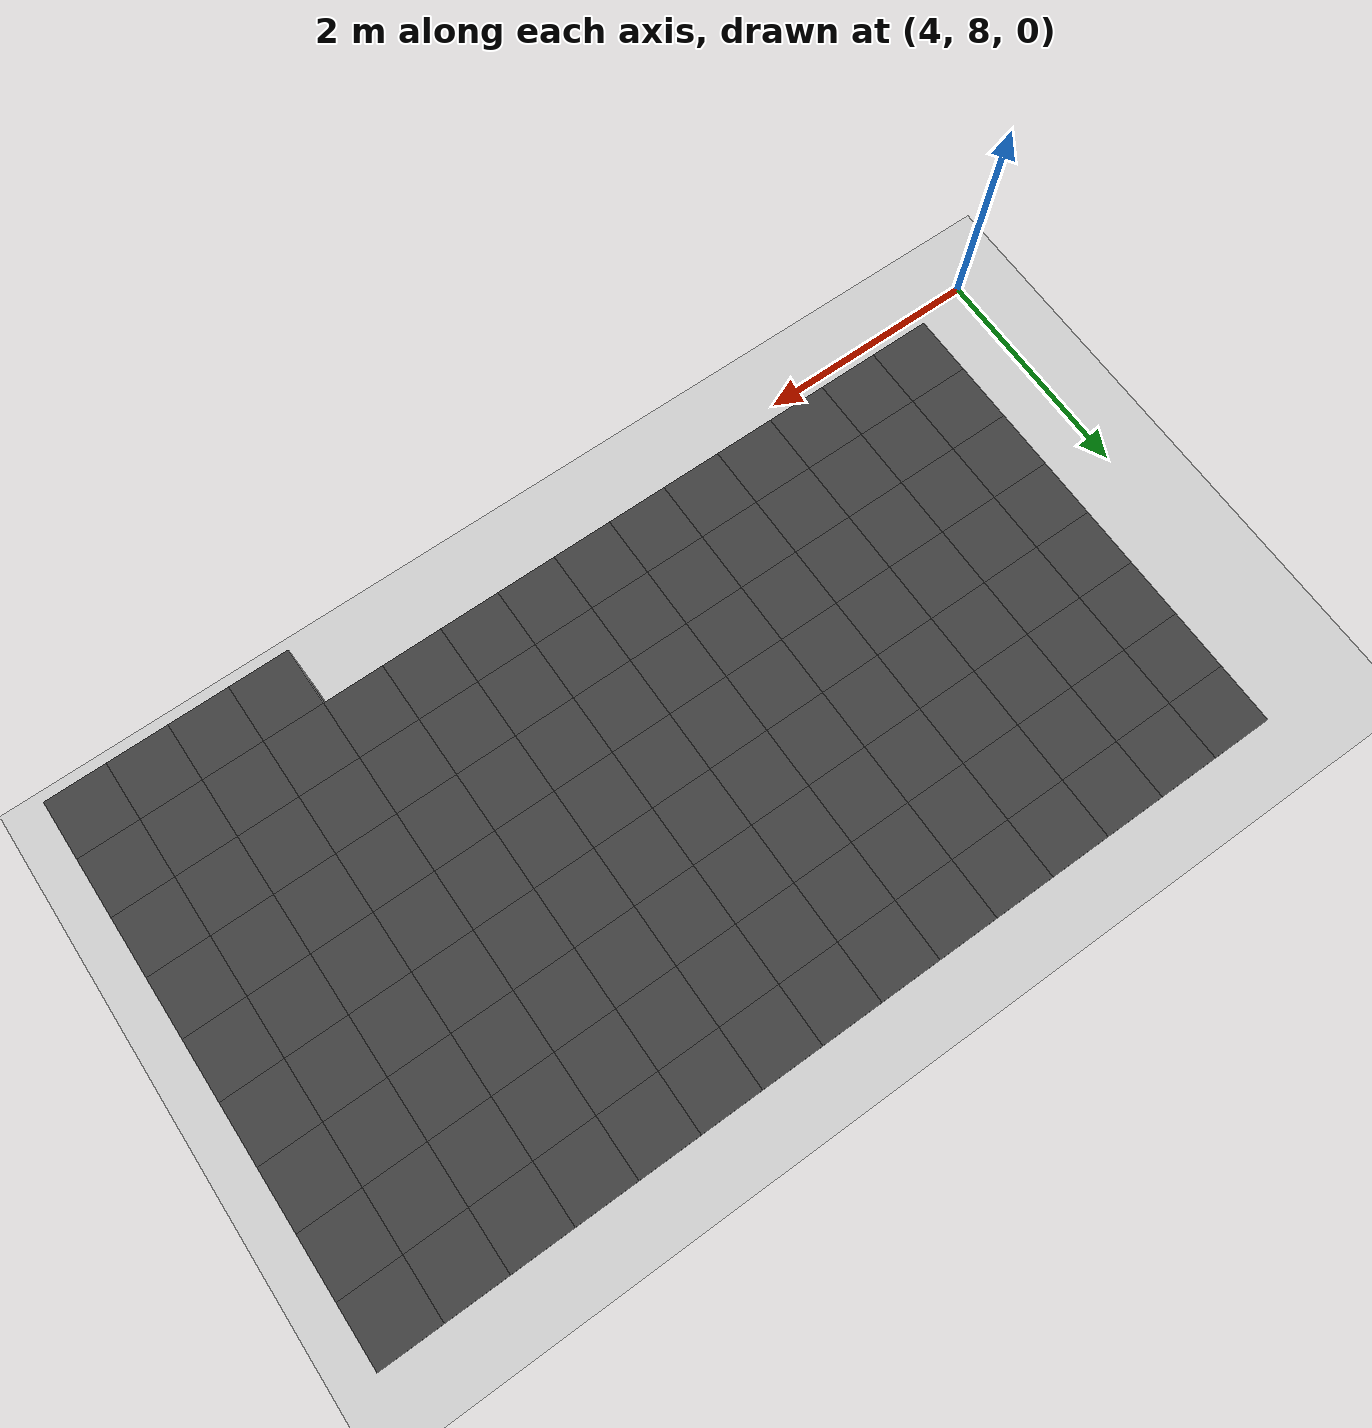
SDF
<sdf version="1.7">
 <world name="map_13364">
  <model name="ground_plane">
   <static>true</static>
   <link name="link">
    <collision name="collision">
     <geometry><plane><normal>0 0 1</normal><size>200 200</size></plane></geometry>
    </collision>
    <visual name="visual">
     <geometry><plane><normal>0 0 1</normal><size>200 200</size></plane></geometry>
     <material><ambient>0.8 0.8 0.8 1</ambient><diffuse>0.8 0.8 0.8 1</diffuse></material>
    </visual>
   </link>
  </model>
  <model name="maze_environment">
   <static>true</static>
   <link name="wall_35">
    <pose>5.250 12.250 0.500 0 0 0</pose>
    <collision name="col"><geometry><box><size>0.5 0.5 1.0</size></box></geometry></collision>
    <visual name="vis">
     <geometry><box><size>0.5 0.5 1.0</size></box></geometry>
     <material><ambient>0.15 0.15 0.15 1</ambient><diffuse>0.25 0.25 0.25 1</diffuse></material>
    </visual>
   </link>
   <link name="wall_36">
    <pose>5.750 12.250 0.500 0 0 0</pose>
    <collision name="col"><geometry><box><size>0.5 0.5 1.0</size></box></geometry></collision>
    <visual name="vis">
     <geometry><box><size>0.5 0.5 1.0</size></box></geometry>
     <material><ambient>0.15 0.15 0.15 1</ambient><diffuse>0.25 0.25 0.25 1</diffuse></material>
    </visual>
   </link>
   <link name="wall_37">
    <pose>6.250 12.250 0.500 0 0 0</pose>
    <collision name="col"><geometry><box><size>0.5 0.5 1.0</size></box></geometry></collision>
    <visual name="vis">
     <geometry><box><size>0.5 0.5 1.0</size></box></geometry>
     <material><ambient>0.15 0.15 0.15 1</ambient><diffuse>0.25 0.25 0.25 1</diffuse></material>
    </visual>
   </link>
   <link name="wall_38">
    <pose>6.750 12.250 0.500 0 0 0</pose>
    <collision name="col"><geometry><box><size>0.5 0.5 1.0</size></box></geometry></collision>
    <visual name="vis">
     <geometry><box><size>0.5 0.5 1.0</size></box></geometry>
     <material><ambient>0.15 0.15 0.15 1</ambient><diffuse>0.25 0.25 0.25 1</diffuse></material>
    </visual>
   </link>
   <link name="wall_39">
    <pose>7.250 12.250 0.500 0 0 0</pose>
    <collision name="col"><geometry><box><size>0.5 0.5 1.0</size></box></geometry></collision>
    <visual name="vis">
     <geometry><box><size>0.5 0.5 1.0</size></box></geometry>
     <material><ambient>0.15 0.15 0.15 1</ambient><diffuse>0.25 0.25 0.25 1</diffuse></material>
    </visual>
   </link>
   <link name="wall_40">
    <pose>7.750 12.250 0.500 0 0 0</pose>
    <collision name="col"><geometry><box><size>0.5 0.5 1.0</size></box></geometry></collision>
    <visual name="vis">
     <geometry><box><size>0.5 0.5 1.0</size></box></geometry>
     <material><ambient>0.15 0.15 0.15 1</ambient><diffuse>0.25 0.25 0.25 1</diffuse></material>
    </visual>
   </link>
   <link name="wall_41">
    <pose>8.250 12.250 0.500 0 0 0</pose>
    <collision name="col"><geometry><box><size>0.5 0.5 1.0</size></box></geometry></collision>
    <visual name="vis">
     <geometry><box><size>0.5 0.5 1.0</size></box></geometry>
     <material><ambient>0.15 0.15 0.15 1</ambient><diffuse>0.25 0.25 0.25 1</diffuse></material>
    </visual>
   </link>
   <link name="wall_42">
    <pose>8.750 12.250 0.500 0 0 0</pose>
    <collision name="col"><geometry><box><size>0.5 0.5 1.0</size></box></geometry></collision>
    <visual name="vis">
     <geometry><box><size>0.5 0.5 1.0</size></box></geometry>
     <material><ambient>0.15 0.15 0.15 1</ambient><diffuse>0.25 0.25 0.25 1</diffuse></material>
    </visual>
   </link>
   <link name="wall_43">
    <pose>9.250 12.250 0.500 0 0 0</pose>
    <collision name="col"><geometry><box><size>0.5 0.5 1.0</size></box></geometry></collision>
    <visual name="vis">
     <geometry><box><size>0.5 0.5 1.0</size></box></geometry>
     <material><ambient>0.15 0.15 0.15 1</ambient><diffuse>0.25 0.25 0.25 1</diffuse></material>
    </visual>
   </link>
   <link name="wall_44">
    <pose>9.750 12.250 0.500 0 0 0</pose>
    <collision name="col"><geometry><box><size>0.5 0.5 1.0</size></box></geometry></collision>
    <visual name="vis">
     <geometry><box><size>0.5 0.5 1.0</size></box></geometry>
     <material><ambient>0.15 0.15 0.15 1</ambient><diffuse>0.25 0.25 0.25 1</diffuse></material>
    </visual>
   </link>
   <link name="wall_45">
    <pose>10.250 12.250 0.500 0 0 0</pose>
    <collision name="col"><geometry><box><size>0.5 0.5 1.0</size></box></geometry></collision>
    <visual name="vis">
     <geometry><box><size>0.5 0.5 1.0</size></box></geometry>
     <material><ambient>0.15 0.15 0.15 1</ambient><diffuse>0.25 0.25 0.25 1</diffuse></material>
    </visual>
   </link>
   <link name="wall_46">
    <pose>10.750 12.250 0.500 0 0 0</pose>
    <collision name="col"><geometry><box><size>0.5 0.5 1.0</size></box></geometry></collision>
    <visual name="vis">
     <geometry><box><size>0.5 0.5 1.0</size></box></geometry>
     <material><ambient>0.15 0.15 0.15 1</ambient><diffuse>0.25 0.25 0.25 1</diffuse></material>
    </visual>
   </link>
   <link name="wall_47">
    <pose>11.250 12.250 0.500 0 0 0</pose>
    <collision name="col"><geometry><box><size>0.5 0.5 1.0</size></box></geometry></collision>
    <visual name="vis">
     <geometry><box><size>0.5 0.5 1.0</size></box></geometry>
     <material><ambient>0.15 0.15 0.15 1</ambient><diffuse>0.25 0.25 0.25 1</diffuse></material>
    </visual>
   </link>
   <link name="wall_48">
    <pose>11.750 12.250 0.500 0 0 0</pose>
    <collision name="col"><geometry><box><size>0.5 0.5 1.0</size></box></geometry></collision>
    <visual name="vis">
     <geometry><box><size>0.5 0.5 1.0</size></box></geometry>
     <material><ambient>0.15 0.15 0.15 1</ambient><diffuse>0.25 0.25 0.25 1</diffuse></material>
    </visual>
   </link>
   <link name="wall_49">
    <pose>12.250 12.250 0.500 0 0 0</pose>
    <collision name="col"><geometry><box><size>0.5 0.5 1.0</size></box></geometry></collision>
    <visual name="vis">
     <geometry><box><size>0.5 0.5 1.0</size></box></geometry>
     <material><ambient>0.15 0.15 0.15 1</ambient><diffuse>0.25 0.25 0.25 1</diffuse></material>
    </visual>
   </link>
   <link name="wall_82">
    <pose>5.250 11.750 0.500 0 0 0</pose>
    <collision name="col"><geometry><box><size>0.5 0.5 1.0</size></box></geometry></collision>
    <visual name="vis">
     <geometry><box><size>0.5 0.5 1.0</size></box></geometry>
     <material><ambient>0.15 0.15 0.15 1</ambient><diffuse>0.25 0.25 0.25 1</diffuse></material>
    </visual>
   </link>
   <link name="wall_83">
    <pose>5.750 11.750 0.500 0 0 0</pose>
    <collision name="col"><geometry><box><size>0.5 0.5 1.0</size></box></geometry></collision>
    <visual name="vis">
     <geometry><box><size>0.5 0.5 1.0</size></box></geometry>
     <material><ambient>0.15 0.15 0.15 1</ambient><diffuse>0.25 0.25 0.25 1</diffuse></material>
    </visual>
   </link>
   <link name="wall_84">
    <pose>6.250 11.750 0.500 0 0 0</pose>
    <collision name="col"><geometry><box><size>0.5 0.5 1.0</size></box></geometry></collision>
    <visual name="vis">
     <geometry><box><size>0.5 0.5 1.0</size></box></geometry>
     <material><ambient>0.15 0.15 0.15 1</ambient><diffuse>0.25 0.25 0.25 1</diffuse></material>
    </visual>
   </link>
   <link name="wall_85">
    <pose>6.750 11.750 0.500 0 0 0</pose>
    <collision name="col"><geometry><box><size>0.5 0.5 1.0</size></box></geometry></collision>
    <visual name="vis">
     <geometry><box><size>0.5 0.5 1.0</size></box></geometry>
     <material><ambient>0.15 0.15 0.15 1</ambient><diffuse>0.25 0.25 0.25 1</diffuse></material>
    </visual>
   </link>
   <link name="wall_86">
    <pose>7.250 11.750 0.500 0 0 0</pose>
    <collision name="col"><geometry><box><size>0.5 0.5 1.0</size></box></geometry></collision>
    <visual name="vis">
     <geometry><box><size>0.5 0.5 1.0</size></box></geometry>
     <material><ambient>0.15 0.15 0.15 1</ambient><diffuse>0.25 0.25 0.25 1</diffuse></material>
    </visual>
   </link>
   <link name="wall_87">
    <pose>7.750 11.750 0.500 0 0 0</pose>
    <collision name="col"><geometry><box><size>0.5 0.5 1.0</size></box></geometry></collision>
    <visual name="vis">
     <geometry><box><size>0.5 0.5 1.0</size></box></geometry>
     <material><ambient>0.15 0.15 0.15 1</ambient><diffuse>0.25 0.25 0.25 1</diffuse></material>
    </visual>
   </link>
   <link name="wall_88">
    <pose>8.250 11.750 0.500 0 0 0</pose>
    <collision name="col"><geometry><box><size>0.5 0.5 1.0</size></box></geometry></collision>
    <visual name="vis">
     <geometry><box><size>0.5 0.5 1.0</size></box></geometry>
     <material><ambient>0.15 0.15 0.15 1</ambient><diffuse>0.25 0.25 0.25 1</diffuse></material>
    </visual>
   </link>
   <link name="wall_89">
    <pose>8.750 11.750 0.500 0 0 0</pose>
    <collision name="col"><geometry><box><size>0.5 0.5 1.0</size></box></geometry></collision>
    <visual name="vis">
     <geometry><box><size>0.5 0.5 1.0</size></box></geometry>
     <material><ambient>0.15 0.15 0.15 1</ambient><diffuse>0.25 0.25 0.25 1</diffuse></material>
    </visual>
   </link>
   <link name="wall_90">
    <pose>9.250 11.750 0.500 0 0 0</pose>
    <collision name="col"><geometry><box><size>0.5 0.5 1.0</size></box></geometry></collision>
    <visual name="vis">
     <geometry><box><size>0.5 0.5 1.0</size></box></geometry>
     <material><ambient>0.15 0.15 0.15 1</ambient><diffuse>0.25 0.25 0.25 1</diffuse></material>
    </visual>
   </link>
   <link name="wall_91">
    <pose>9.750 11.750 0.500 0 0 0</pose>
    <collision name="col"><geometry><box><size>0.5 0.5 1.0</size></box></geometry></collision>
    <visual name="vis">
     <geometry><box><size>0.5 0.5 1.0</size></box></geometry>
     <material><ambient>0.15 0.15 0.15 1</ambient><diffuse>0.25 0.25 0.25 1</diffuse></material>
    </visual>
   </link>
   <link name="wall_92">
    <pose>10.250 11.750 0.500 0 0 0</pose>
    <collision name="col"><geometry><box><size>0.5 0.5 1.0</size></box></geometry></collision>
    <visual name="vis">
     <geometry><box><size>0.5 0.5 1.0</size></box></geometry>
     <material><ambient>0.15 0.15 0.15 1</ambient><diffuse>0.25 0.25 0.25 1</diffuse></material>
    </visual>
   </link>
   <link name="wall_93">
    <pose>10.750 11.750 0.500 0 0 0</pose>
    <collision name="col"><geometry><box><size>0.5 0.5 1.0</size></box></geometry></collision>
    <visual name="vis">
     <geometry><box><size>0.5 0.5 1.0</size></box></geometry>
     <material><ambient>0.15 0.15 0.15 1</ambient><diffuse>0.25 0.25 0.25 1</diffuse></material>
    </visual>
   </link>
   <link name="wall_94">
    <pose>11.250 11.750 0.500 0 0 0</pose>
    <collision name="col"><geometry><box><size>0.5 0.5 1.0</size></box></geometry></collision>
    <visual name="vis">
     <geometry><box><size>0.5 0.5 1.0</size></box></geometry>
     <material><ambient>0.15 0.15 0.15 1</ambient><diffuse>0.25 0.25 0.25 1</diffuse></material>
    </visual>
   </link>
   <link name="wall_95">
    <pose>11.750 11.750 0.500 0 0 0</pose>
    <collision name="col"><geometry><box><size>0.5 0.5 1.0</size></box></geometry></collision>
    <visual name="vis">
     <geometry><box><size>0.5 0.5 1.0</size></box></geometry>
     <material><ambient>0.15 0.15 0.15 1</ambient><diffuse>0.25 0.25 0.25 1</diffuse></material>
    </visual>
   </link>
   <link name="wall_96">
    <pose>12.250 11.750 0.500 0 0 0</pose>
    <collision name="col"><geometry><box><size>0.5 0.5 1.0</size></box></geometry></collision>
    <visual name="vis">
     <geometry><box><size>0.5 0.5 1.0</size></box></geometry>
     <material><ambient>0.15 0.15 0.15 1</ambient><diffuse>0.25 0.25 0.25 1</diffuse></material>
    </visual>
   </link>
   <link name="wall_129">
    <pose>5.250 11.250 0.500 0 0 0</pose>
    <collision name="col"><geometry><box><size>0.5 0.5 1.0</size></box></geometry></collision>
    <visual name="vis">
     <geometry><box><size>0.5 0.5 1.0</size></box></geometry>
     <material><ambient>0.15 0.15 0.15 1</ambient><diffuse>0.25 0.25 0.25 1</diffuse></material>
    </visual>
   </link>
   <link name="wall_130">
    <pose>5.750 11.250 0.500 0 0 0</pose>
    <collision name="col"><geometry><box><size>0.5 0.5 1.0</size></box></geometry></collision>
    <visual name="vis">
     <geometry><box><size>0.5 0.5 1.0</size></box></geometry>
     <material><ambient>0.15 0.15 0.15 1</ambient><diffuse>0.25 0.25 0.25 1</diffuse></material>
    </visual>
   </link>
   <link name="wall_131">
    <pose>6.250 11.250 0.500 0 0 0</pose>
    <collision name="col"><geometry><box><size>0.5 0.5 1.0</size></box></geometry></collision>
    <visual name="vis">
     <geometry><box><size>0.5 0.5 1.0</size></box></geometry>
     <material><ambient>0.15 0.15 0.15 1</ambient><diffuse>0.25 0.25 0.25 1</diffuse></material>
    </visual>
   </link>
   <link name="wall_132">
    <pose>6.750 11.250 0.500 0 0 0</pose>
    <collision name="col"><geometry><box><size>0.5 0.5 1.0</size></box></geometry></collision>
    <visual name="vis">
     <geometry><box><size>0.5 0.5 1.0</size></box></geometry>
     <material><ambient>0.15 0.15 0.15 1</ambient><diffuse>0.25 0.25 0.25 1</diffuse></material>
    </visual>
   </link>
   <link name="wall_133">
    <pose>7.250 11.250 0.500 0 0 0</pose>
    <collision name="col"><geometry><box><size>0.5 0.5 1.0</size></box></geometry></collision>
    <visual name="vis">
     <geometry><box><size>0.5 0.5 1.0</size></box></geometry>
     <material><ambient>0.15 0.15 0.15 1</ambient><diffuse>0.25 0.25 0.25 1</diffuse></material>
    </visual>
   </link>
   <link name="wall_134">
    <pose>7.750 11.250 0.500 0 0 0</pose>
    <collision name="col"><geometry><box><size>0.5 0.5 1.0</size></box></geometry></collision>
    <visual name="vis">
     <geometry><box><size>0.5 0.5 1.0</size></box></geometry>
     <material><ambient>0.15 0.15 0.15 1</ambient><diffuse>0.25 0.25 0.25 1</diffuse></material>
    </visual>
   </link>
   <link name="wall_135">
    <pose>8.250 11.250 0.500 0 0 0</pose>
    <collision name="col"><geometry><box><size>0.5 0.5 1.0</size></box></geometry></collision>
    <visual name="vis">
     <geometry><box><size>0.5 0.5 1.0</size></box></geometry>
     <material><ambient>0.15 0.15 0.15 1</ambient><diffuse>0.25 0.25 0.25 1</diffuse></material>
    </visual>
   </link>
   <link name="wall_136">
    <pose>8.750 11.250 0.500 0 0 0</pose>
    <collision name="col"><geometry><box><size>0.5 0.5 1.0</size></box></geometry></collision>
    <visual name="vis">
     <geometry><box><size>0.5 0.5 1.0</size></box></geometry>
     <material><ambient>0.15 0.15 0.15 1</ambient><diffuse>0.25 0.25 0.25 1</diffuse></material>
    </visual>
   </link>
   <link name="wall_137">
    <pose>9.250 11.250 0.500 0 0 0</pose>
    <collision name="col"><geometry><box><size>0.5 0.5 1.0</size></box></geometry></collision>
    <visual name="vis">
     <geometry><box><size>0.5 0.5 1.0</size></box></geometry>
     <material><ambient>0.15 0.15 0.15 1</ambient><diffuse>0.25 0.25 0.25 1</diffuse></material>
    </visual>
   </link>
   <link name="wall_138">
    <pose>9.750 11.250 0.500 0 0 0</pose>
    <collision name="col"><geometry><box><size>0.5 0.5 1.0</size></box></geometry></collision>
    <visual name="vis">
     <geometry><box><size>0.5 0.5 1.0</size></box></geometry>
     <material><ambient>0.15 0.15 0.15 1</ambient><diffuse>0.25 0.25 0.25 1</diffuse></material>
    </visual>
   </link>
   <link name="wall_139">
    <pose>10.250 11.250 0.500 0 0 0</pose>
    <collision name="col"><geometry><box><size>0.5 0.5 1.0</size></box></geometry></collision>
    <visual name="vis">
     <geometry><box><size>0.5 0.5 1.0</size></box></geometry>
     <material><ambient>0.15 0.15 0.15 1</ambient><diffuse>0.25 0.25 0.25 1</diffuse></material>
    </visual>
   </link>
   <link name="wall_140">
    <pose>10.750 11.250 0.500 0 0 0</pose>
    <collision name="col"><geometry><box><size>0.5 0.5 1.0</size></box></geometry></collision>
    <visual name="vis">
     <geometry><box><size>0.5 0.5 1.0</size></box></geometry>
     <material><ambient>0.15 0.15 0.15 1</ambient><diffuse>0.25 0.25 0.25 1</diffuse></material>
    </visual>
   </link>
   <link name="wall_141">
    <pose>11.250 11.250 0.500 0 0 0</pose>
    <collision name="col"><geometry><box><size>0.5 0.5 1.0</size></box></geometry></collision>
    <visual name="vis">
     <geometry><box><size>0.5 0.5 1.0</size></box></geometry>
     <material><ambient>0.15 0.15 0.15 1</ambient><diffuse>0.25 0.25 0.25 1</diffuse></material>
    </visual>
   </link>
   <link name="wall_142">
    <pose>11.750 11.250 0.500 0 0 0</pose>
    <collision name="col"><geometry><box><size>0.5 0.5 1.0</size></box></geometry></collision>
    <visual name="vis">
     <geometry><box><size>0.5 0.5 1.0</size></box></geometry>
     <material><ambient>0.15 0.15 0.15 1</ambient><diffuse>0.25 0.25 0.25 1</diffuse></material>
    </visual>
   </link>
   <link name="wall_143">
    <pose>12.250 11.250 0.500 0 0 0</pose>
    <collision name="col"><geometry><box><size>0.5 0.5 1.0</size></box></geometry></collision>
    <visual name="vis">
     <geometry><box><size>0.5 0.5 1.0</size></box></geometry>
     <material><ambient>0.15 0.15 0.15 1</ambient><diffuse>0.25 0.25 0.25 1</diffuse></material>
    </visual>
   </link>
   <link name="wall_176">
    <pose>5.250 10.750 0.500 0 0 0</pose>
    <collision name="col"><geometry><box><size>0.5 0.5 1.0</size></box></geometry></collision>
    <visual name="vis">
     <geometry><box><size>0.5 0.5 1.0</size></box></geometry>
     <material><ambient>0.15 0.15 0.15 1</ambient><diffuse>0.25 0.25 0.25 1</diffuse></material>
    </visual>
   </link>
   <link name="wall_177">
    <pose>5.750 10.750 0.500 0 0 0</pose>
    <collision name="col"><geometry><box><size>0.5 0.5 1.0</size></box></geometry></collision>
    <visual name="vis">
     <geometry><box><size>0.5 0.5 1.0</size></box></geometry>
     <material><ambient>0.15 0.15 0.15 1</ambient><diffuse>0.25 0.25 0.25 1</diffuse></material>
    </visual>
   </link>
   <link name="wall_178">
    <pose>6.250 10.750 0.500 0 0 0</pose>
    <collision name="col"><geometry><box><size>0.5 0.5 1.0</size></box></geometry></collision>
    <visual name="vis">
     <geometry><box><size>0.5 0.5 1.0</size></box></geometry>
     <material><ambient>0.15 0.15 0.15 1</ambient><diffuse>0.25 0.25 0.25 1</diffuse></material>
    </visual>
   </link>
   <link name="wall_179">
    <pose>6.750 10.750 0.500 0 0 0</pose>
    <collision name="col"><geometry><box><size>0.5 0.5 1.0</size></box></geometry></collision>
    <visual name="vis">
     <geometry><box><size>0.5 0.5 1.0</size></box></geometry>
     <material><ambient>0.15 0.15 0.15 1</ambient><diffuse>0.25 0.25 0.25 1</diffuse></material>
    </visual>
   </link>
   <link name="wall_180">
    <pose>7.250 10.750 0.500 0 0 0</pose>
    <collision name="col"><geometry><box><size>0.5 0.5 1.0</size></box></geometry></collision>
    <visual name="vis">
     <geometry><box><size>0.5 0.5 1.0</size></box></geometry>
     <material><ambient>0.15 0.15 0.15 1</ambient><diffuse>0.25 0.25 0.25 1</diffuse></material>
    </visual>
   </link>
   <link name="wall_181">
    <pose>7.750 10.750 0.500 0 0 0</pose>
    <collision name="col"><geometry><box><size>0.5 0.5 1.0</size></box></geometry></collision>
    <visual name="vis">
     <geometry><box><size>0.5 0.5 1.0</size></box></geometry>
     <material><ambient>0.15 0.15 0.15 1</ambient><diffuse>0.25 0.25 0.25 1</diffuse></material>
    </visual>
   </link>
   <link name="wall_182">
    <pose>8.250 10.750 0.500 0 0 0</pose>
    <collision name="col"><geometry><box><size>0.5 0.5 1.0</size></box></geometry></collision>
    <visual name="vis">
     <geometry><box><size>0.5 0.5 1.0</size></box></geometry>
     <material><ambient>0.15 0.15 0.15 1</ambient><diffuse>0.25 0.25 0.25 1</diffuse></material>
    </visual>
   </link>
   <link name="wall_183">
    <pose>8.750 10.750 0.500 0 0 0</pose>
    <collision name="col"><geometry><box><size>0.5 0.5 1.0</size></box></geometry></collision>
    <visual name="vis">
     <geometry><box><size>0.5 0.5 1.0</size></box></geometry>
     <material><ambient>0.15 0.15 0.15 1</ambient><diffuse>0.25 0.25 0.25 1</diffuse></material>
    </visual>
   </link>
   <link name="wall_184">
    <pose>9.250 10.750 0.500 0 0 0</pose>
    <collision name="col"><geometry><box><size>0.5 0.5 1.0</size></box></geometry></collision>
    <visual name="vis">
     <geometry><box><size>0.5 0.5 1.0</size></box></geometry>
     <material><ambient>0.15 0.15 0.15 1</ambient><diffuse>0.25 0.25 0.25 1</diffuse></material>
    </visual>
   </link>
   <link name="wall_185">
    <pose>9.750 10.750 0.500 0 0 0</pose>
    <collision name="col"><geometry><box><size>0.5 0.5 1.0</size></box></geometry></collision>
    <visual name="vis">
     <geometry><box><size>0.5 0.5 1.0</size></box></geometry>
     <material><ambient>0.15 0.15 0.15 1</ambient><diffuse>0.25 0.25 0.25 1</diffuse></material>
    </visual>
   </link>
   <link name="wall_186">
    <pose>10.250 10.750 0.500 0 0 0</pose>
    <collision name="col"><geometry><box><size>0.5 0.5 1.0</size></box></geometry></collision>
    <visual name="vis">
     <geometry><box><size>0.5 0.5 1.0</size></box></geometry>
     <material><ambient>0.15 0.15 0.15 1</ambient><diffuse>0.25 0.25 0.25 1</diffuse></material>
    </visual>
   </link>
   <link name="wall_187">
    <pose>10.750 10.750 0.500 0 0 0</pose>
    <collision name="col"><geometry><box><size>0.5 0.5 1.0</size></box></geometry></collision>
    <visual name="vis">
     <geometry><box><size>0.5 0.5 1.0</size></box></geometry>
     <material><ambient>0.15 0.15 0.15 1</ambient><diffuse>0.25 0.25 0.25 1</diffuse></material>
    </visual>
   </link>
   <link name="wall_188">
    <pose>11.250 10.750 0.500 0 0 0</pose>
    <collision name="col"><geometry><box><size>0.5 0.5 1.0</size></box></geometry></collision>
    <visual name="vis">
     <geometry><box><size>0.5 0.5 1.0</size></box></geometry>
     <material><ambient>0.15 0.15 0.15 1</ambient><diffuse>0.25 0.25 0.25 1</diffuse></material>
    </visual>
   </link>
   <link name="wall_189">
    <pose>11.750 10.750 0.500 0 0 0</pose>
    <collision name="col"><geometry><box><size>0.5 0.5 1.0</size></box></geometry></collision>
    <visual name="vis">
     <geometry><box><size>0.5 0.5 1.0</size></box></geometry>
     <material><ambient>0.15 0.15 0.15 1</ambient><diffuse>0.25 0.25 0.25 1</diffuse></material>
    </visual>
   </link>
   <link name="wall_190">
    <pose>12.250 10.750 0.500 0 0 0</pose>
    <collision name="col"><geometry><box><size>0.5 0.5 1.0</size></box></geometry></collision>
    <visual name="vis">
     <geometry><box><size>0.5 0.5 1.0</size></box></geometry>
     <material><ambient>0.15 0.15 0.15 1</ambient><diffuse>0.25 0.25 0.25 1</diffuse></material>
    </visual>
   </link>
   <link name="wall_220">
    <pose>5.250 10.250 0.500 0 0 0</pose>
    <collision name="col"><geometry><box><size>0.5 0.5 1.0</size></box></geometry></collision>
    <visual name="vis">
     <geometry><box><size>0.5 0.5 1.0</size></box></geometry>
     <material><ambient>0.15 0.15 0.15 1</ambient><diffuse>0.25 0.25 0.25 1</diffuse></material>
    </visual>
   </link>
   <link name="wall_221">
    <pose>5.750 10.250 0.500 0 0 0</pose>
    <collision name="col"><geometry><box><size>0.5 0.5 1.0</size></box></geometry></collision>
    <visual name="vis">
     <geometry><box><size>0.5 0.5 1.0</size></box></geometry>
     <material><ambient>0.15 0.15 0.15 1</ambient><diffuse>0.25 0.25 0.25 1</diffuse></material>
    </visual>
   </link>
   <link name="wall_222">
    <pose>6.250 10.250 0.500 0 0 0</pose>
    <collision name="col"><geometry><box><size>0.5 0.5 1.0</size></box></geometry></collision>
    <visual name="vis">
     <geometry><box><size>0.5 0.5 1.0</size></box></geometry>
     <material><ambient>0.15 0.15 0.15 1</ambient><diffuse>0.25 0.25 0.25 1</diffuse></material>
    </visual>
   </link>
   <link name="wall_223">
    <pose>6.750 10.250 0.500 0 0 0</pose>
    <collision name="col"><geometry><box><size>0.5 0.5 1.0</size></box></geometry></collision>
    <visual name="vis">
     <geometry><box><size>0.5 0.5 1.0</size></box></geometry>
     <material><ambient>0.15 0.15 0.15 1</ambient><diffuse>0.25 0.25 0.25 1</diffuse></material>
    </visual>
   </link>
   <link name="wall_224">
    <pose>7.250 10.250 0.500 0 0 0</pose>
    <collision name="col"><geometry><box><size>0.5 0.5 1.0</size></box></geometry></collision>
    <visual name="vis">
     <geometry><box><size>0.5 0.5 1.0</size></box></geometry>
     <material><ambient>0.15 0.15 0.15 1</ambient><diffuse>0.25 0.25 0.25 1</diffuse></material>
    </visual>
   </link>
   <link name="wall_225">
    <pose>7.750 10.250 0.500 0 0 0</pose>
    <collision name="col"><geometry><box><size>0.5 0.5 1.0</size></box></geometry></collision>
    <visual name="vis">
     <geometry><box><size>0.5 0.5 1.0</size></box></geometry>
     <material><ambient>0.15 0.15 0.15 1</ambient><diffuse>0.25 0.25 0.25 1</diffuse></material>
    </visual>
   </link>
   <link name="wall_226">
    <pose>8.250 10.250 0.500 0 0 0</pose>
    <collision name="col"><geometry><box><size>0.5 0.5 1.0</size></box></geometry></collision>
    <visual name="vis">
     <geometry><box><size>0.5 0.5 1.0</size></box></geometry>
     <material><ambient>0.15 0.15 0.15 1</ambient><diffuse>0.25 0.25 0.25 1</diffuse></material>
    </visual>
   </link>
   <link name="wall_227">
    <pose>8.750 10.250 0.500 0 0 0</pose>
    <collision name="col"><geometry><box><size>0.5 0.5 1.0</size></box></geometry></collision>
    <visual name="vis">
     <geometry><box><size>0.5 0.5 1.0</size></box></geometry>
     <material><ambient>0.15 0.15 0.15 1</ambient><diffuse>0.25 0.25 0.25 1</diffuse></material>
    </visual>
   </link>
   <link name="wall_228">
    <pose>9.250 10.250 0.500 0 0 0</pose>
    <collision name="col"><geometry><box><size>0.5 0.5 1.0</size></box></geometry></collision>
    <visual name="vis">
     <geometry><box><size>0.5 0.5 1.0</size></box></geometry>
     <material><ambient>0.15 0.15 0.15 1</ambient><diffuse>0.25 0.25 0.25 1</diffuse></material>
    </visual>
   </link>
   <link name="wall_229">
    <pose>9.750 10.250 0.500 0 0 0</pose>
    <collision name="col"><geometry><box><size>0.5 0.5 1.0</size></box></geometry></collision>
    <visual name="vis">
     <geometry><box><size>0.5 0.5 1.0</size></box></geometry>
     <material><ambient>0.15 0.15 0.15 1</ambient><diffuse>0.25 0.25 0.25 1</diffuse></material>
    </visual>
   </link>
   <link name="wall_230">
    <pose>10.250 10.250 0.500 0 0 0</pose>
    <collision name="col"><geometry><box><size>0.5 0.5 1.0</size></box></geometry></collision>
    <visual name="vis">
     <geometry><box><size>0.5 0.5 1.0</size></box></geometry>
     <material><ambient>0.15 0.15 0.15 1</ambient><diffuse>0.25 0.25 0.25 1</diffuse></material>
    </visual>
   </link>
   <link name="wall_231">
    <pose>10.750 10.250 0.500 0 0 0</pose>
    <collision name="col"><geometry><box><size>0.5 0.5 1.0</size></box></geometry></collision>
    <visual name="vis">
     <geometry><box><size>0.5 0.5 1.0</size></box></geometry>
     <material><ambient>0.15 0.15 0.15 1</ambient><diffuse>0.25 0.25 0.25 1</diffuse></material>
    </visual>
   </link>
   <link name="wall_232">
    <pose>11.250 10.250 0.500 0 0 0</pose>
    <collision name="col"><geometry><box><size>0.5 0.5 1.0</size></box></geometry></collision>
    <visual name="vis">
     <geometry><box><size>0.5 0.5 1.0</size></box></geometry>
     <material><ambient>0.15 0.15 0.15 1</ambient><diffuse>0.25 0.25 0.25 1</diffuse></material>
    </visual>
   </link>
   <link name="wall_233">
    <pose>11.750 10.250 0.500 0 0 0</pose>
    <collision name="col"><geometry><box><size>0.5 0.5 1.0</size></box></geometry></collision>
    <visual name="vis">
     <geometry><box><size>0.5 0.5 1.0</size></box></geometry>
     <material><ambient>0.15 0.15 0.15 1</ambient><diffuse>0.25 0.25 0.25 1</diffuse></material>
    </visual>
   </link>
   <link name="wall_234">
    <pose>12.250 10.250 0.500 0 0 0</pose>
    <collision name="col"><geometry><box><size>0.5 0.5 1.0</size></box></geometry></collision>
    <visual name="vis">
     <geometry><box><size>0.5 0.5 1.0</size></box></geometry>
     <material><ambient>0.15 0.15 0.15 1</ambient><diffuse>0.25 0.25 0.25 1</diffuse></material>
    </visual>
   </link>
   <link name="wall_264">
    <pose>5.250 9.750 0.500 0 0 0</pose>
    <collision name="col"><geometry><box><size>0.5 0.5 1.0</size></box></geometry></collision>
    <visual name="vis">
     <geometry><box><size>0.5 0.5 1.0</size></box></geometry>
     <material><ambient>0.15 0.15 0.15 1</ambient><diffuse>0.25 0.25 0.25 1</diffuse></material>
    </visual>
   </link>
   <link name="wall_265">
    <pose>5.750 9.750 0.500 0 0 0</pose>
    <collision name="col"><geometry><box><size>0.5 0.5 1.0</size></box></geometry></collision>
    <visual name="vis">
     <geometry><box><size>0.5 0.5 1.0</size></box></geometry>
     <material><ambient>0.15 0.15 0.15 1</ambient><diffuse>0.25 0.25 0.25 1</diffuse></material>
    </visual>
   </link>
   <link name="wall_266">
    <pose>6.250 9.750 0.500 0 0 0</pose>
    <collision name="col"><geometry><box><size>0.5 0.5 1.0</size></box></geometry></collision>
    <visual name="vis">
     <geometry><box><size>0.5 0.5 1.0</size></box></geometry>
     <material><ambient>0.15 0.15 0.15 1</ambient><diffuse>0.25 0.25 0.25 1</diffuse></material>
    </visual>
   </link>
   <link name="wall_267">
    <pose>6.750 9.750 0.500 0 0 0</pose>
    <collision name="col"><geometry><box><size>0.5 0.5 1.0</size></box></geometry></collision>
    <visual name="vis">
     <geometry><box><size>0.5 0.5 1.0</size></box></geometry>
     <material><ambient>0.15 0.15 0.15 1</ambient><diffuse>0.25 0.25 0.25 1</diffuse></material>
    </visual>
   </link>
   <link name="wall_268">
    <pose>7.250 9.750 0.500 0 0 0</pose>
    <collision name="col"><geometry><box><size>0.5 0.5 1.0</size></box></geometry></collision>
    <visual name="vis">
     <geometry><box><size>0.5 0.5 1.0</size></box></geometry>
     <material><ambient>0.15 0.15 0.15 1</ambient><diffuse>0.25 0.25 0.25 1</diffuse></material>
    </visual>
   </link>
   <link name="wall_269">
    <pose>7.750 9.750 0.500 0 0 0</pose>
    <collision name="col"><geometry><box><size>0.5 0.5 1.0</size></box></geometry></collision>
    <visual name="vis">
     <geometry><box><size>0.5 0.5 1.0</size></box></geometry>
     <material><ambient>0.15 0.15 0.15 1</ambient><diffuse>0.25 0.25 0.25 1</diffuse></material>
    </visual>
   </link>
   <link name="wall_270">
    <pose>8.250 9.750 0.500 0 0 0</pose>
    <collision name="col"><geometry><box><size>0.5 0.5 1.0</size></box></geometry></collision>
    <visual name="vis">
     <geometry><box><size>0.5 0.5 1.0</size></box></geometry>
     <material><ambient>0.15 0.15 0.15 1</ambient><diffuse>0.25 0.25 0.25 1</diffuse></material>
    </visual>
   </link>
   <link name="wall_271">
    <pose>8.750 9.750 0.500 0 0 0</pose>
    <collision name="col"><geometry><box><size>0.5 0.5 1.0</size></box></geometry></collision>
    <visual name="vis">
     <geometry><box><size>0.5 0.5 1.0</size></box></geometry>
     <material><ambient>0.15 0.15 0.15 1</ambient><diffuse>0.25 0.25 0.25 1</diffuse></material>
    </visual>
   </link>
   <link name="wall_272">
    <pose>9.250 9.750 0.500 0 0 0</pose>
    <collision name="col"><geometry><box><size>0.5 0.5 1.0</size></box></geometry></collision>
    <visual name="vis">
     <geometry><box><size>0.5 0.5 1.0</size></box></geometry>
     <material><ambient>0.15 0.15 0.15 1</ambient><diffuse>0.25 0.25 0.25 1</diffuse></material>
    </visual>
   </link>
   <link name="wall_273">
    <pose>9.750 9.750 0.500 0 0 0</pose>
    <collision name="col"><geometry><box><size>0.5 0.5 1.0</size></box></geometry></collision>
    <visual name="vis">
     <geometry><box><size>0.5 0.5 1.0</size></box></geometry>
     <material><ambient>0.15 0.15 0.15 1</ambient><diffuse>0.25 0.25 0.25 1</diffuse></material>
    </visual>
   </link>
   <link name="wall_274">
    <pose>10.250 9.750 0.500 0 0 0</pose>
    <collision name="col"><geometry><box><size>0.5 0.5 1.0</size></box></geometry></collision>
    <visual name="vis">
     <geometry><box><size>0.5 0.5 1.0</size></box></geometry>
     <material><ambient>0.15 0.15 0.15 1</ambient><diffuse>0.25 0.25 0.25 1</diffuse></material>
    </visual>
   </link>
   <link name="wall_275">
    <pose>10.750 9.750 0.500 0 0 0</pose>
    <collision name="col"><geometry><box><size>0.5 0.5 1.0</size></box></geometry></collision>
    <visual name="vis">
     <geometry><box><size>0.5 0.5 1.0</size></box></geometry>
     <material><ambient>0.15 0.15 0.15 1</ambient><diffuse>0.25 0.25 0.25 1</diffuse></material>
    </visual>
   </link>
   <link name="wall_276">
    <pose>11.250 9.750 0.500 0 0 0</pose>
    <collision name="col"><geometry><box><size>0.5 0.5 1.0</size></box></geometry></collision>
    <visual name="vis">
     <geometry><box><size>0.5 0.5 1.0</size></box></geometry>
     <material><ambient>0.15 0.15 0.15 1</ambient><diffuse>0.25 0.25 0.25 1</diffuse></material>
    </visual>
   </link>
   <link name="wall_277">
    <pose>11.750 9.750 0.500 0 0 0</pose>
    <collision name="col"><geometry><box><size>0.5 0.5 1.0</size></box></geometry></collision>
    <visual name="vis">
     <geometry><box><size>0.5 0.5 1.0</size></box></geometry>
     <material><ambient>0.15 0.15 0.15 1</ambient><diffuse>0.25 0.25 0.25 1</diffuse></material>
    </visual>
   </link>
   <link name="wall_278">
    <pose>12.250 9.750 0.500 0 0 0</pose>
    <collision name="col"><geometry><box><size>0.5 0.5 1.0</size></box></geometry></collision>
    <visual name="vis">
     <geometry><box><size>0.5 0.5 1.0</size></box></geometry>
     <material><ambient>0.15 0.15 0.15 1</ambient><diffuse>0.25 0.25 0.25 1</diffuse></material>
    </visual>
   </link>
   <link name="wall_308">
    <pose>5.250 9.250 0.500 0 0 0</pose>
    <collision name="col"><geometry><box><size>0.5 0.5 1.0</size></box></geometry></collision>
    <visual name="vis">
     <geometry><box><size>0.5 0.5 1.0</size></box></geometry>
     <material><ambient>0.15 0.15 0.15 1</ambient><diffuse>0.25 0.25 0.25 1</diffuse></material>
    </visual>
   </link>
   <link name="wall_309">
    <pose>5.750 9.250 0.500 0 0 0</pose>
    <collision name="col"><geometry><box><size>0.5 0.5 1.0</size></box></geometry></collision>
    <visual name="vis">
     <geometry><box><size>0.5 0.5 1.0</size></box></geometry>
     <material><ambient>0.15 0.15 0.15 1</ambient><diffuse>0.25 0.25 0.25 1</diffuse></material>
    </visual>
   </link>
   <link name="wall_310">
    <pose>6.250 9.250 0.500 0 0 0</pose>
    <collision name="col"><geometry><box><size>0.5 0.5 1.0</size></box></geometry></collision>
    <visual name="vis">
     <geometry><box><size>0.5 0.5 1.0</size></box></geometry>
     <material><ambient>0.15 0.15 0.15 1</ambient><diffuse>0.25 0.25 0.25 1</diffuse></material>
    </visual>
   </link>
   <link name="wall_311">
    <pose>6.750 9.250 0.500 0 0 0</pose>
    <collision name="col"><geometry><box><size>0.5 0.5 1.0</size></box></geometry></collision>
    <visual name="vis">
     <geometry><box><size>0.5 0.5 1.0</size></box></geometry>
     <material><ambient>0.15 0.15 0.15 1</ambient><diffuse>0.25 0.25 0.25 1</diffuse></material>
    </visual>
   </link>
   <link name="wall_312">
    <pose>7.250 9.250 0.500 0 0 0</pose>
    <collision name="col"><geometry><box><size>0.5 0.5 1.0</size></box></geometry></collision>
    <visual name="vis">
     <geometry><box><size>0.5 0.5 1.0</size></box></geometry>
     <material><ambient>0.15 0.15 0.15 1</ambient><diffuse>0.25 0.25 0.25 1</diffuse></material>
    </visual>
   </link>
   <link name="wall_313">
    <pose>7.750 9.250 0.500 0 0 0</pose>
    <collision name="col"><geometry><box><size>0.5 0.5 1.0</size></box></geometry></collision>
    <visual name="vis">
     <geometry><box><size>0.5 0.5 1.0</size></box></geometry>
     <material><ambient>0.15 0.15 0.15 1</ambient><diffuse>0.25 0.25 0.25 1</diffuse></material>
    </visual>
   </link>
   <link name="wall_314">
    <pose>8.250 9.250 0.500 0 0 0</pose>
    <collision name="col"><geometry><box><size>0.5 0.5 1.0</size></box></geometry></collision>
    <visual name="vis">
     <geometry><box><size>0.5 0.5 1.0</size></box></geometry>
     <material><ambient>0.15 0.15 0.15 1</ambient><diffuse>0.25 0.25 0.25 1</diffuse></material>
    </visual>
   </link>
   <link name="wall_315">
    <pose>8.750 9.250 0.500 0 0 0</pose>
    <collision name="col"><geometry><box><size>0.5 0.5 1.0</size></box></geometry></collision>
    <visual name="vis">
     <geometry><box><size>0.5 0.5 1.0</size></box></geometry>
     <material><ambient>0.15 0.15 0.15 1</ambient><diffuse>0.25 0.25 0.25 1</diffuse></material>
    </visual>
   </link>
   <link name="wall_316">
    <pose>9.250 9.250 0.500 0 0 0</pose>
    <collision name="col"><geometry><box><size>0.5 0.5 1.0</size></box></geometry></collision>
    <visual name="vis">
     <geometry><box><size>0.5 0.5 1.0</size></box></geometry>
     <material><ambient>0.15 0.15 0.15 1</ambient><diffuse>0.25 0.25 0.25 1</diffuse></material>
    </visual>
   </link>
   <link name="wall_317">
    <pose>9.750 9.250 0.500 0 0 0</pose>
    <collision name="col"><geometry><box><size>0.5 0.5 1.0</size></box></geometry></collision>
    <visual name="vis">
     <geometry><box><size>0.5 0.5 1.0</size></box></geometry>
     <material><ambient>0.15 0.15 0.15 1</ambient><diffuse>0.25 0.25 0.25 1</diffuse></material>
    </visual>
   </link>
   <link name="wall_318">
    <pose>10.250 9.250 0.500 0 0 0</pose>
    <collision name="col"><geometry><box><size>0.5 0.5 1.0</size></box></geometry></collision>
    <visual name="vis">
     <geometry><box><size>0.5 0.5 1.0</size></box></geometry>
     <material><ambient>0.15 0.15 0.15 1</ambient><diffuse>0.25 0.25 0.25 1</diffuse></material>
    </visual>
   </link>
   <link name="wall_319">
    <pose>10.750 9.250 0.500 0 0 0</pose>
    <collision name="col"><geometry><box><size>0.5 0.5 1.0</size></box></geometry></collision>
    <visual name="vis">
     <geometry><box><size>0.5 0.5 1.0</size></box></geometry>
     <material><ambient>0.15 0.15 0.15 1</ambient><diffuse>0.25 0.25 0.25 1</diffuse></material>
    </visual>
   </link>
   <link name="wall_320">
    <pose>11.250 9.250 0.500 0 0 0</pose>
    <collision name="col"><geometry><box><size>0.5 0.5 1.0</size></box></geometry></collision>
    <visual name="vis">
     <geometry><box><size>0.5 0.5 1.0</size></box></geometry>
     <material><ambient>0.15 0.15 0.15 1</ambient><diffuse>0.25 0.25 0.25 1</diffuse></material>
    </visual>
   </link>
   <link name="wall_321">
    <pose>11.750 9.250 0.500 0 0 0</pose>
    <collision name="col"><geometry><box><size>0.5 0.5 1.0</size></box></geometry></collision>
    <visual name="vis">
     <geometry><box><size>0.5 0.5 1.0</size></box></geometry>
     <material><ambient>0.15 0.15 0.15 1</ambient><diffuse>0.25 0.25 0.25 1</diffuse></material>
    </visual>
   </link>
   <link name="wall_322">
    <pose>12.250 9.250 0.500 0 0 0</pose>
    <collision name="col"><geometry><box><size>0.5 0.5 1.0</size></box></geometry></collision>
    <visual name="vis">
     <geometry><box><size>0.5 0.5 1.0</size></box></geometry>
     <material><ambient>0.15 0.15 0.15 1</ambient><diffuse>0.25 0.25 0.25 1</diffuse></material>
    </visual>
   </link>
   <link name="wall_352">
    <pose>5.250 8.750 0.500 0 0 0</pose>
    <collision name="col"><geometry><box><size>0.5 0.5 1.0</size></box></geometry></collision>
    <visual name="vis">
     <geometry><box><size>0.5 0.5 1.0</size></box></geometry>
     <material><ambient>0.15 0.15 0.15 1</ambient><diffuse>0.25 0.25 0.25 1</diffuse></material>
    </visual>
   </link>
   <link name="wall_353">
    <pose>5.750 8.750 0.500 0 0 0</pose>
    <collision name="col"><geometry><box><size>0.5 0.5 1.0</size></box></geometry></collision>
    <visual name="vis">
     <geometry><box><size>0.5 0.5 1.0</size></box></geometry>
     <material><ambient>0.15 0.15 0.15 1</ambient><diffuse>0.25 0.25 0.25 1</diffuse></material>
    </visual>
   </link>
   <link name="wall_354">
    <pose>6.250 8.750 0.500 0 0 0</pose>
    <collision name="col"><geometry><box><size>0.5 0.5 1.0</size></box></geometry></collision>
    <visual name="vis">
     <geometry><box><size>0.5 0.5 1.0</size></box></geometry>
     <material><ambient>0.15 0.15 0.15 1</ambient><diffuse>0.25 0.25 0.25 1</diffuse></material>
    </visual>
   </link>
   <link name="wall_355">
    <pose>6.750 8.750 0.500 0 0 0</pose>
    <collision name="col"><geometry><box><size>0.5 0.5 1.0</size></box></geometry></collision>
    <visual name="vis">
     <geometry><box><size>0.5 0.5 1.0</size></box></geometry>
     <material><ambient>0.15 0.15 0.15 1</ambient><diffuse>0.25 0.25 0.25 1</diffuse></material>
    </visual>
   </link>
   <link name="wall_356">
    <pose>7.250 8.750 0.500 0 0 0</pose>
    <collision name="col"><geometry><box><size>0.5 0.5 1.0</size></box></geometry></collision>
    <visual name="vis">
     <geometry><box><size>0.5 0.5 1.0</size></box></geometry>
     <material><ambient>0.15 0.15 0.15 1</ambient><diffuse>0.25 0.25 0.25 1</diffuse></material>
    </visual>
   </link>
   <link name="wall_357">
    <pose>7.750 8.750 0.500 0 0 0</pose>
    <collision name="col"><geometry><box><size>0.5 0.5 1.0</size></box></geometry></collision>
    <visual name="vis">
     <geometry><box><size>0.5 0.5 1.0</size></box></geometry>
     <material><ambient>0.15 0.15 0.15 1</ambient><diffuse>0.25 0.25 0.25 1</diffuse></material>
    </visual>
   </link>
   <link name="wall_358">
    <pose>8.250 8.750 0.500 0 0 0</pose>
    <collision name="col"><geometry><box><size>0.5 0.5 1.0</size></box></geometry></collision>
    <visual name="vis">
     <geometry><box><size>0.5 0.5 1.0</size></box></geometry>
     <material><ambient>0.15 0.15 0.15 1</ambient><diffuse>0.25 0.25 0.25 1</diffuse></material>
    </visual>
   </link>
   <link name="wall_359">
    <pose>8.750 8.750 0.500 0 0 0</pose>
    <collision name="col"><geometry><box><size>0.5 0.5 1.0</size></box></geometry></collision>
    <visual name="vis">
     <geometry><box><size>0.5 0.5 1.0</size></box></geometry>
     <material><ambient>0.15 0.15 0.15 1</ambient><diffuse>0.25 0.25 0.25 1</diffuse></material>
    </visual>
   </link>
   <link name="wall_360">
    <pose>9.250 8.750 0.500 0 0 0</pose>
    <collision name="col"><geometry><box><size>0.5 0.5 1.0</size></box></geometry></collision>
    <visual name="vis">
     <geometry><box><size>0.5 0.5 1.0</size></box></geometry>
     <material><ambient>0.15 0.15 0.15 1</ambient><diffuse>0.25 0.25 0.25 1</diffuse></material>
    </visual>
   </link>
   <link name="wall_361">
    <pose>9.750 8.750 0.500 0 0 0</pose>
    <collision name="col"><geometry><box><size>0.5 0.5 1.0</size></box></geometry></collision>
    <visual name="vis">
     <geometry><box><size>0.5 0.5 1.0</size></box></geometry>
     <material><ambient>0.15 0.15 0.15 1</ambient><diffuse>0.25 0.25 0.25 1</diffuse></material>
    </visual>
   </link>
   <link name="wall_362">
    <pose>10.250 8.750 0.500 0 0 0</pose>
    <collision name="col"><geometry><box><size>0.5 0.5 1.0</size></box></geometry></collision>
    <visual name="vis">
     <geometry><box><size>0.5 0.5 1.0</size></box></geometry>
     <material><ambient>0.15 0.15 0.15 1</ambient><diffuse>0.25 0.25 0.25 1</diffuse></material>
    </visual>
   </link>
   <link name="wall_363">
    <pose>10.750 8.750 0.500 0 0 0</pose>
    <collision name="col"><geometry><box><size>0.5 0.5 1.0</size></box></geometry></collision>
    <visual name="vis">
     <geometry><box><size>0.5 0.5 1.0</size></box></geometry>
     <material><ambient>0.15 0.15 0.15 1</ambient><diffuse>0.25 0.25 0.25 1</diffuse></material>
    </visual>
   </link>
   <link name="wall_364">
    <pose>11.250 8.750 0.500 0 0 0</pose>
    <collision name="col"><geometry><box><size>0.5 0.5 1.0</size></box></geometry></collision>
    <visual name="vis">
     <geometry><box><size>0.5 0.5 1.0</size></box></geometry>
     <material><ambient>0.15 0.15 0.15 1</ambient><diffuse>0.25 0.25 0.25 1</diffuse></material>
    </visual>
   </link>
   <link name="wall_365">
    <pose>11.750 8.750 0.500 0 0 0</pose>
    <collision name="col"><geometry><box><size>0.5 0.5 1.0</size></box></geometry></collision>
    <visual name="vis">
     <geometry><box><size>0.5 0.5 1.0</size></box></geometry>
     <material><ambient>0.15 0.15 0.15 1</ambient><diffuse>0.25 0.25 0.25 1</diffuse></material>
    </visual>
   </link>
   <link name="wall_366">
    <pose>12.250 8.750 0.500 0 0 0</pose>
    <collision name="col"><geometry><box><size>0.5 0.5 1.0</size></box></geometry></collision>
    <visual name="vis">
     <geometry><box><size>0.5 0.5 1.0</size></box></geometry>
     <material><ambient>0.15 0.15 0.15 1</ambient><diffuse>0.25 0.25 0.25 1</diffuse></material>
    </visual>
   </link>
   <link name="wall_407">
    <pose>10.750 8.250 0.500 0 0 0</pose>
    <collision name="col"><geometry><box><size>0.5 0.5 1.0</size></box></geometry></collision>
    <visual name="vis">
     <geometry><box><size>0.5 0.5 1.0</size></box></geometry>
     <material><ambient>0.15 0.15 0.15 1</ambient><diffuse>0.25 0.25 0.25 1</diffuse></material>
    </visual>
   </link>
   <link name="wall_408">
    <pose>11.250 8.250 0.500 0 0 0</pose>
    <collision name="col"><geometry><box><size>0.5 0.5 1.0</size></box></geometry></collision>
    <visual name="vis">
     <geometry><box><size>0.5 0.5 1.0</size></box></geometry>
     <material><ambient>0.15 0.15 0.15 1</ambient><diffuse>0.25 0.25 0.25 1</diffuse></material>
    </visual>
   </link>
   <link name="wall_409">
    <pose>11.750 8.250 0.500 0 0 0</pose>
    <collision name="col"><geometry><box><size>0.5 0.5 1.0</size></box></geometry></collision>
    <visual name="vis">
     <geometry><box><size>0.5 0.5 1.0</size></box></geometry>
     <material><ambient>0.15 0.15 0.15 1</ambient><diffuse>0.25 0.25 0.25 1</diffuse></material>
    </visual>
   </link>
   <link name="wall_410">
    <pose>12.250 8.250 0.500 0 0 0</pose>
    <collision name="col"><geometry><box><size>0.5 0.5 1.0</size></box></geometry></collision>
    <visual name="vis">
     <geometry><box><size>0.5 0.5 1.0</size></box></geometry>
     <material><ambient>0.15 0.15 0.15 1</ambient><diffuse>0.25 0.25 0.25 1</diffuse></material>
    </visual>
   </link>
  </model>
 </world>
</sdf>
